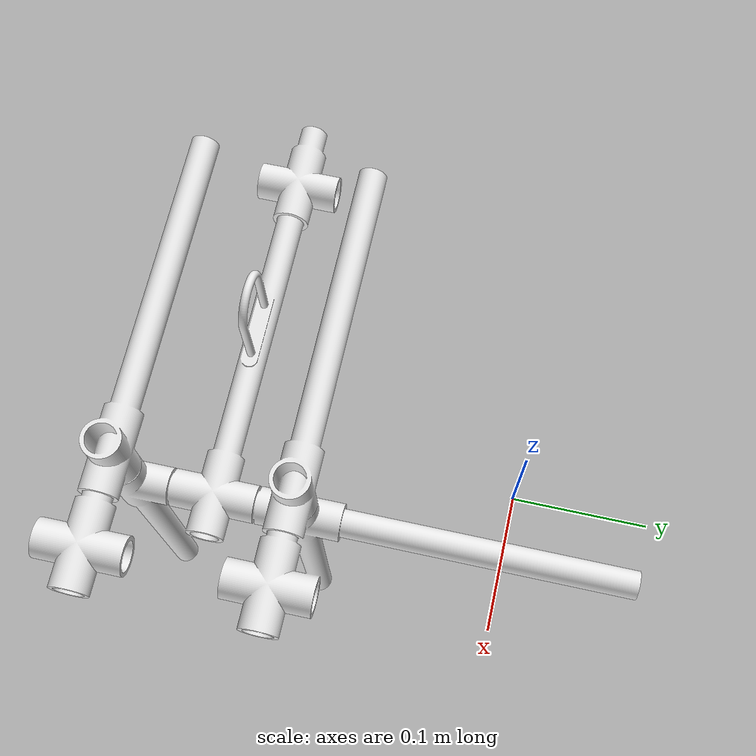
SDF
<?xml version='1.0'?>
<sdf version='1.7'>
  <model name='multifunction_node'>
    <link name='part_1'>
      <inertial>
        <pose>0 0 0 0 -0 0</pose>
        <mass>1e+12</mass>
        <inertia>
          <ixx>1.34359e+07</ixx>
          <ixy>0</ixy>
          <ixz>0</ixz>
          <iyy>4.04733e+08</iyy>
          <iyz>0</iyz>
          <izz>4.07964e+08</izz>
        </inertia>
      </inertial>
      <self_collide>0</self_collide>
      <enable_wind>0</enable_wind>
      <kinematic>0</kinematic>
      <pose>-0.087877 -0.216714 0 3.14159 -1.57079 3.14159</pose>
      <gravity>1</gravity>
      <is_static>1</is_static>
      <frame name='part_1_frame'>
        <pose>0 0 0 0 -0 0</pose>
      </frame>
      <visual name='assembly_visual'>
        <pose>0 0 0 0 -0 0</pose>
        <geometry>
          <mesh>
            <uri>/home/eer/Documents/Software_2024/ROS2/models/multifunction_node/multifunction_node_visual.stl</uri>
            <scale>1 1 1</scale>
          </mesh>
        </geometry>
        <material>
          <shader type='pixel'>
            <normal_map>__default__</normal_map>
          </shader>
          <script>
            <name>Gazebo/White</name>
            <uri>__default__</uri>
          </script>
          <ambient>0.9 0.9 0.9 1</ambient>
          <diffuse>0.9 0.9 0.9 1</diffuse>
          <specular>0.9 0.9 0.9 1</specular>
          <emissive>0 0 0 1</emissive>
        </material>
        <transparency>0</transparency>
        <cast_shadows>1</cast_shadows>
      </visual>
      <collision name='collision_1'>
        <laser_retro>0</laser_retro>
        <max_contacts>10</max_contacts>
        <pose>0.05 0 0.02 0 -0 0</pose>
        <geometry>
          <box>
            <size>0.06925 0.01 0.007825</size>
          </box>
        </geometry>
        <surface>
          <friction>
            <ode>
              <mu>1</mu>
              <mu2>1</mu2>
              <fdir1>0 0 0</fdir1>
              <slip1>0</slip1>
              <slip2>0</slip2>
            </ode>
            <torsional>
              <coefficient>1</coefficient>
              <patch_radius>0</patch_radius>
              <surface_radius>0</surface_radius>
              <use_patch_radius>1</use_patch_radius>
              <ode>
                <slip>0</slip>
              </ode>
            </torsional>
          </friction>
          <bounce>
            <restitution_coefficient>0</restitution_coefficient>
            <threshold>1e+06</threshold>
          </bounce>
          <contact>
            <collide_without_contact>0</collide_without_contact>
            <collide_without_contact_bitmask>1</collide_without_contact_bitmask>
            <collide_bitmask>1</collide_bitmask>
            <ode>
              <soft_cfm>0</soft_cfm>
              <soft_erp>0.2</soft_erp>
              <kp>1e+13</kp>
              <kd>1</kd>
              <max_vel>0.01</max_vel>
              <min_depth>0</min_depth>
            </ode>
            <bullet>
              <split_impulse>1</split_impulse>
              <split_impulse_penetration_threshold>-0.01</split_impulse_penetration_threshold>
              <soft_cfm>0</soft_cfm>
              <soft_erp>0.2</soft_erp>
              <kp>1e+13</kp>
              <kd>1</kd>
            </bullet>
          </contact>
        </surface>
      </collision>
      <collision name='collision_7'>
        <laser_retro>0</laser_retro>
        <max_contacts>10</max_contacts>
        <pose>0.065 -0.06 -0.27 3.14159 1.57079 3.14159</pose>
        <geometry>
          <box>
            <size>0.00925 0.3 0.027825</size>
          </box>
        </geometry>
        <surface>
          <friction>
            <ode>
              <mu>1</mu>
              <mu2>1</mu2>
              <fdir1>0 0 0</fdir1>
              <slip1>0</slip1>
              <slip2>0</slip2>
            </ode>
            <torsional>
              <coefficient>1</coefficient>
              <patch_radius>0</patch_radius>
              <surface_radius>0</surface_radius>
              <use_patch_radius>1</use_patch_radius>
              <ode>
                <slip>0</slip>
              </ode>
            </torsional>
          </friction>
          <bounce>
            <restitution_coefficient>0</restitution_coefficient>
            <threshold>1e+06</threshold>
          </bounce>
          <contact>
            <collide_without_contact>0</collide_without_contact>
            <collide_without_contact_bitmask>1</collide_without_contact_bitmask>
            <collide_bitmask>1</collide_bitmask>
            <ode>
              <soft_cfm>0</soft_cfm>
              <soft_erp>0.2</soft_erp>
              <kp>1e+13</kp>
              <kd>1</kd>
              <max_vel>0.01</max_vel>
              <min_depth>0</min_depth>
            </ode>
            <bullet>
              <split_impulse>1</split_impulse>
              <split_impulse_penetration_threshold>-0.01</split_impulse_penetration_threshold>
              <soft_cfm>0</soft_cfm>
              <soft_erp>0.2</soft_erp>
              <kp>1e+13</kp>
              <kd>1</kd>
            </bullet>
          </contact>
        </surface>
      </collision>
      <collision name='collision_6'>
        <laser_retro>0</laser_retro>
        <max_contacts>10</max_contacts>
        <pose>0.065 -0.06 -0.13 3.14159 1.57079 3.14159</pose>
        <geometry>
          <box>
            <size>0.00925 0.3 0.027825</size>
          </box>
        </geometry>
        <surface>
          <friction>
            <ode>
              <mu>1</mu>
              <mu2>1</mu2>
              <fdir1>0 0 0</fdir1>
              <slip1>0</slip1>
              <slip2>0</slip2>
            </ode>
            <torsional>
              <coefficient>1</coefficient>
              <patch_radius>0</patch_radius>
              <surface_radius>0</surface_radius>
              <use_patch_radius>1</use_patch_radius>
              <ode>
                <slip>0</slip>
              </ode>
            </torsional>
          </friction>
          <bounce>
            <restitution_coefficient>0</restitution_coefficient>
            <threshold>1e+06</threshold>
          </bounce>
          <contact>
            <collide_without_contact>0</collide_without_contact>
            <collide_without_contact_bitmask>1</collide_without_contact_bitmask>
            <collide_bitmask>1</collide_bitmask>
            <ode>
              <soft_cfm>0</soft_cfm>
              <soft_erp>0.2</soft_erp>
              <kp>1e+13</kp>
              <kd>1</kd>
              <max_vel>0.01</max_vel>
              <min_depth>0</min_depth>
            </ode>
            <bullet>
              <split_impulse>1</split_impulse>
              <split_impulse_penetration_threshold>-0.01</split_impulse_penetration_threshold>
              <soft_cfm>0</soft_cfm>
              <soft_erp>0.2</soft_erp>
              <kp>1e+13</kp>
              <kd>1</kd>
            </bullet>
          </contact>
        </surface>
      </collision>
      <collision name='collision_2'>
        <laser_retro>0</laser_retro>
        <max_contacts>10</max_contacts>
        <pose>0.08 0 0 0 -0 0</pose>
        <geometry>
          <box>
            <size>0.00925 0.01 0.047825</size>
          </box>
        </geometry>
        <surface>
          <friction>
            <ode>
              <mu>1</mu>
              <mu2>1</mu2>
              <fdir1>0 0 0</fdir1>
              <slip1>0</slip1>
              <slip2>0</slip2>
            </ode>
            <torsional>
              <coefficient>1</coefficient>
              <patch_radius>0</patch_radius>
              <surface_radius>0</surface_radius>
              <use_patch_radius>1</use_patch_radius>
              <ode>
                <slip>0</slip>
              </ode>
            </torsional>
          </friction>
          <bounce>
            <restitution_coefficient>0</restitution_coefficient>
            <threshold>1e+06</threshold>
          </bounce>
          <contact>
            <collide_without_contact>0</collide_without_contact>
            <collide_without_contact_bitmask>1</collide_without_contact_bitmask>
            <collide_bitmask>1</collide_bitmask>
            <ode>
              <soft_cfm>0</soft_cfm>
              <soft_erp>0.2</soft_erp>
              <kp>1e+13</kp>
              <kd>1</kd>
              <max_vel>0.01</max_vel>
              <min_depth>0</min_depth>
            </ode>
            <bullet>
              <split_impulse>1</split_impulse>
              <split_impulse_penetration_threshold>-0.01</split_impulse_penetration_threshold>
              <soft_cfm>0</soft_cfm>
              <soft_erp>0.2</soft_erp>
              <kp>1e+13</kp>
              <kd>1</kd>
            </bullet>
          </contact>
        </surface>
      </collision>
      <collision name='collision_4'>
        <laser_retro>0</laser_retro>
        <max_contacts>10</max_contacts>
        <pose>0.05 -0.06 -0.2 0 -0 0</pose>
        <geometry>
          <box>
            <size>0.00925 0.3 0.047825</size>
          </box>
        </geometry>
        <surface>
          <friction>
            <ode>
              <mu>1</mu>
              <mu2>1</mu2>
              <fdir1>0 0 0</fdir1>
              <slip1>0</slip1>
              <slip2>0</slip2>
            </ode>
            <torsional>
              <coefficient>1</coefficient>
              <patch_radius>0</patch_radius>
              <surface_radius>0</surface_radius>
              <use_patch_radius>1</use_patch_radius>
              <ode>
                <slip>0</slip>
              </ode>
            </torsional>
          </friction>
          <bounce>
            <restitution_coefficient>0</restitution_coefficient>
            <threshold>1e+06</threshold>
          </bounce>
          <contact>
            <collide_without_contact>0</collide_without_contact>
            <collide_without_contact_bitmask>1</collide_without_contact_bitmask>
            <collide_bitmask>1</collide_bitmask>
            <ode>
              <soft_cfm>0</soft_cfm>
              <soft_erp>0.2</soft_erp>
              <kp>1e+13</kp>
              <kd>1</kd>
              <max_vel>0.01</max_vel>
              <min_depth>0</min_depth>
            </ode>
            <bullet>
              <split_impulse>1</split_impulse>
              <split_impulse_penetration_threshold>-0.01</split_impulse_penetration_threshold>
              <soft_cfm>0</soft_cfm>
              <soft_erp>0.2</soft_erp>
              <kp>1e+13</kp>
              <kd>1</kd>
            </bullet>
          </contact>
        </surface>
      </collision>
      <collision name='collision_5'>
        <laser_retro>0</laser_retro>
        <max_contacts>10</max_contacts>
        <pose>0.08 -0.06 -0.2 0 -0 0</pose>
        <geometry>
          <box>
            <size>0.00925 0.3 0.047825</size>
          </box>
        </geometry>
        <surface>
          <friction>
            <ode>
              <mu>1</mu>
              <mu2>1</mu2>
              <fdir1>0 0 0</fdir1>
              <slip1>0</slip1>
              <slip2>0</slip2>
            </ode>
            <torsional>
              <coefficient>1</coefficient>
              <patch_radius>0</patch_radius>
              <surface_radius>0</surface_radius>
              <use_patch_radius>1</use_patch_radius>
              <ode>
                <slip>0</slip>
              </ode>
            </torsional>
          </friction>
          <bounce>
            <restitution_coefficient>0</restitution_coefficient>
            <threshold>1e+06</threshold>
          </bounce>
          <contact>
            <collide_without_contact>0</collide_without_contact>
            <collide_without_contact_bitmask>1</collide_without_contact_bitmask>
            <collide_bitmask>1</collide_bitmask>
            <ode>
              <soft_cfm>0</soft_cfm>
              <soft_erp>0.2</soft_erp>
              <kp>1e+13</kp>
              <kd>1</kd>
              <max_vel>0.01</max_vel>
              <min_depth>0</min_depth>
            </ode>
            <bullet>
              <split_impulse>1</split_impulse>
              <split_impulse_penetration_threshold>-0.01</split_impulse_penetration_threshold>
              <soft_cfm>0</soft_cfm>
              <soft_erp>0.2</soft_erp>
              <kp>1e+13</kp>
              <kd>1</kd>
            </bullet>
          </contact>
        </surface>
      </collision>
      <collision name='collision_3'>
        <laser_retro>0</laser_retro>
        <max_contacts>10</max_contacts>
        <pose>0.05 0 -0.02 0 -0 0</pose>
        <geometry>
          <box>
            <size>0.06925 0.01 0.007825</size>
          </box>
        </geometry>
        <surface>
          <friction>
            <ode>
              <mu>1</mu>
              <mu2>1</mu2>
              <fdir1>0 0 0</fdir1>
              <slip1>0</slip1>
              <slip2>0</slip2>
            </ode>
            <torsional>
              <coefficient>1</coefficient>
              <patch_radius>0</patch_radius>
              <surface_radius>0</surface_radius>
              <use_patch_radius>1</use_patch_radius>
              <ode>
                <slip>0</slip>
              </ode>
            </torsional>
          </friction>
          <bounce>
            <restitution_coefficient>0</restitution_coefficient>
            <threshold>1e+06</threshold>
          </bounce>
          <contact>
            <collide_without_contact>0</collide_without_contact>
            <collide_without_contact_bitmask>1</collide_without_contact_bitmask>
            <collide_bitmask>1</collide_bitmask>
            <ode>
              <soft_cfm>0</soft_cfm>
              <soft_erp>0.2</soft_erp>
              <kp>1e+13</kp>
              <kd>1</kd>
              <max_vel>0.01</max_vel>
              <min_depth>0</min_depth>
            </ode>
            <bullet>
              <split_impulse>1</split_impulse>
              <split_impulse_penetration_threshold>-0.01</split_impulse_penetration_threshold>
              <soft_cfm>0</soft_cfm>
              <soft_erp>0.2</soft_erp>
              <kp>1e+13</kp>
              <kd>1</kd>
            </bullet>
          </contact>
        </surface>
      </collision>
    </link>
    <static>1</static>
    <allow_auto_disable>1</allow_auto_disable>
  </model>
</sdf>
